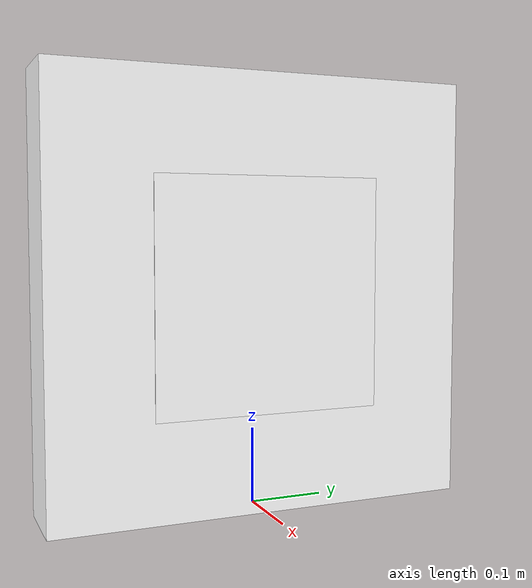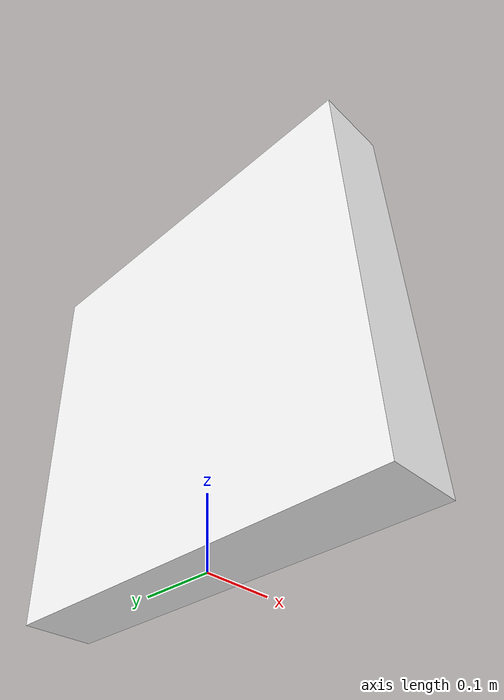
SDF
<?xml version="1.0"?>
<sdf version="1.8">
  <model name="aruco_3">
    <static>true</static>
    <link name="link">
      <visual name="board_visual">
        <pose>0.0 0 0.28 0 0 0</pose>
        <geometry>
          <box>
            <size>0.1 0.56 0.56</size>
          </box>
        </geometry>
        <material>
          <ambient>1 1 1 1</ambient>
          <diffuse>1 1 1 1</diffuse>
        </material>
      </visual>
      <collision name="board_collision">
        <pose>0.0 0.0 0.28 0 0 0</pose>
        <geometry>
          <box>
            <size>0.1 0.56 0.56</size>
          </box>
        </geometry>
      </collision>

      <visual name="marker_visual">
        <pose>0.06 0 0.28 0 0 0</pose>
        <geometry>
          <box>
            <size>0.001 0.3 0.3</size>
          </box>
        </geometry>
        <material>
          <diffuse>1 1 1 1</diffuse>
          <pbr>
            <metal>
              <albedo_map>textures/marker_42.png</albedo_map>
            </metal>
          </pbr>
        </material>
      </visual>
    </link>
  </model>
</sdf>
